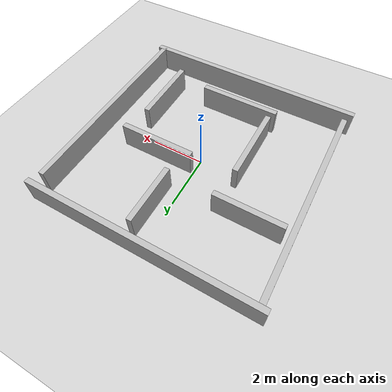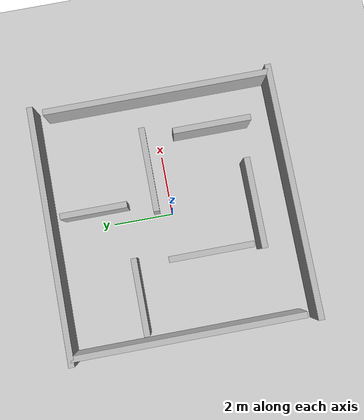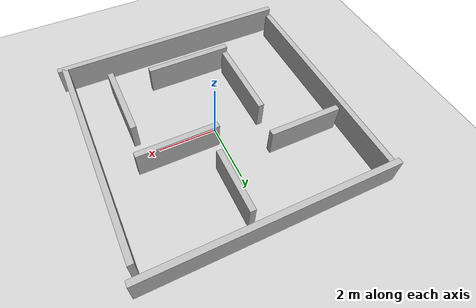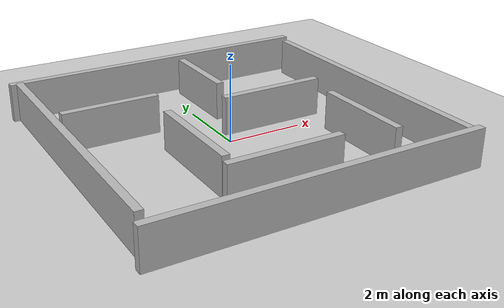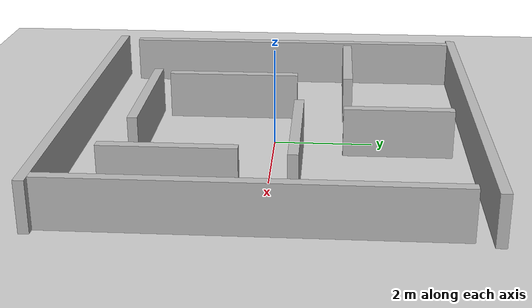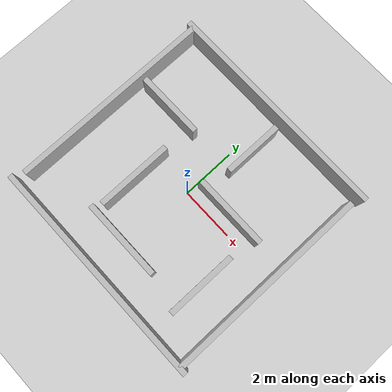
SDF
<?xml version="1.0" ?>
<sdf version="1.9">
  <world name="maze_world">

    <physics name="1ms" type="ode">
      <max_step_size>0.001</max_step_size>
      <real_time_factor>1.0</real_time_factor>
    </physics>

    <plugin
      filename="gz-sim-physics-system"
      name="gz::sim::systems::Physics"/>
    <plugin
      filename="gz-sim-user-commands-system"
      name="gz::sim::systems::UserCommands"/>
    <plugin
      filename="gz-sim-scene-broadcaster-system"
      name="gz::sim::systems::SceneBroadcaster"/>

    <plugin filename="gz-sim-sensors-system"
        name="gz::sim::systems::Sensors">
      <render_engine>ogre2</render_engine>
    </plugin>

    <light type="directional" name="sun">
      <cast_shadows>true</cast_shadows>
      <pose>0 0 10 0 0 0</pose>
      <diffuse>0.8 0.8 0.8 1</diffuse>
      <specular>0.2 0.2 0.2 1</specular>
      <direction>-0.5 0.1 -0.9</direction>
    </light>

    <model name="ground_plane">
      <static>true</static>
      <link name="link">
        <collision name="collision">
          <geometry>
            <plane>
              <normal>0 0 1</normal>
              <size>20 20</size>
            </plane>
          </geometry>
        </collision>
        <visual name="visual">
          <geometry>
            <plane>
              <normal>0 0 1</normal>
              <size>20 20</size>
            </plane>
          </geometry>
          <material>
            <ambient>0.8 0.8 0.8 1</ambient>
            <diffuse>0.8 0.8 0.8 1</diffuse>
          </material>
        </visual>
      </link>
    </model>

    <!-- Outer walls -->
    <model name="outer_walls">
      <static>true</static>

      <link name="north_wall">
        <pose>0 4 0.5 0 0 0</pose>
        <collision name="collision">
          <geometry><box><size>8.5 0.2 1.0</size></box></geometry>
        </collision>
        <visual name="visual">
          <geometry><box><size>8.5 0.2 1.0</size></box></geometry>
        </visual>
      </link>

      <link name="south_wall">
        <pose>0 -4 0.5 0 0 0</pose>
        <collision name="collision">
          <geometry><box><size>8.5 0.2 1.0</size></box></geometry>
        </collision>
        <visual name="visual">
          <geometry><box><size>8.5 0.2 1.0</size></box></geometry>
        </visual>
      </link>

      <link name="east_wall">
        <pose>4 -0.2 0.5 0 0 0</pose>
        <collision name="collision">
          <geometry><box><size>0.2 7.6 1.0</size></box></geometry>
        </collision>
        <visual name="visual">
          <geometry><box><size>0.2 7.6 1.0</size></box></geometry>
        </visual>
      </link>

      <link name="west_wall">
        <pose>-4 0.2 0.5 0 0 0</pose>
        <collision name="collision">
          <geometry><box><size>0.2 7.6 1.0</size></box></geometry>
        </collision>
        <visual name="visual">
          <geometry><box><size>0.2 7.6 1.0</size></box></geometry>
        </visual>
      </link>
    </model>

    <!-- Internal maze walls -->
    <model name="maze_walls">
      <static>true</static>

      <link name="wall_1">
        <pose>-2.5 1.5 0.5 0 0 0</pose>
        <collision name="collision">
          <geometry><box><size>2.5 0.2 1.0</size></box></geometry>
        </collision>
        <visual name="visual">
          <geometry><box><size>2.5 0.2 1.0</size></box></geometry>
        </visual>
      </link>

      <link name="wall_2">
        <pose>-1.5 -1.0 0.5 0 0 1.5708</pose>
        <collision name="collision">
          <geometry><box><size>2.8 0.2 1.0</size></box></geometry>
        </collision>
        <visual name="visual">
          <geometry><box><size>2.8 0.2 1.0</size></box></geometry>
        </visual>
      </link>

      <link name="wall_3">
        <pose>0.5 2.5 0.5 0 0 1.5708</pose>
        <collision name="collision">
          <geometry><box><size>2.2 0.2 1.0</size></box></geometry>
        </collision>
        <visual name="visual">
          <geometry><box><size>2.2 0.2 1.0</size></box></geometry>
        </visual>
      </link>

      <link name="wall_4">
        <pose>1.5 0.5 0.5 0 0 0</pose>
        <collision name="collision">
          <geometry><box><size>2.8 0.2 1.0</size></box></geometry>
        </collision>
        <visual name="visual">
          <geometry><box><size>2.8 0.2 1.0</size></box></geometry>
        </visual>
      </link>

      <link name="wall_5">
        <pose>2.6 -1.8 0.5 0 0 1.5708</pose>
        <collision name="collision">
          <geometry><box><size>2.6 0.2 1.0</size></box></geometry>
        </collision>
        <visual name="visual">
          <geometry><box><size>2.6 0.2 1.0</size></box></geometry>
        </visual>
      </link>

      <link name="wall_6">
        <pose>-0.2 -2.7 0.5 0 0 0</pose>
        <collision name="collision">
          <geometry><box><size>3.0 0.2 1.0</size></box></geometry>
        </collision>
        <visual name="visual">
          <geometry><box><size>3.0 0.2 1.0</size></box></geometry>
        </visual>
      </link>
    </model>

  </world>
</sdf>
